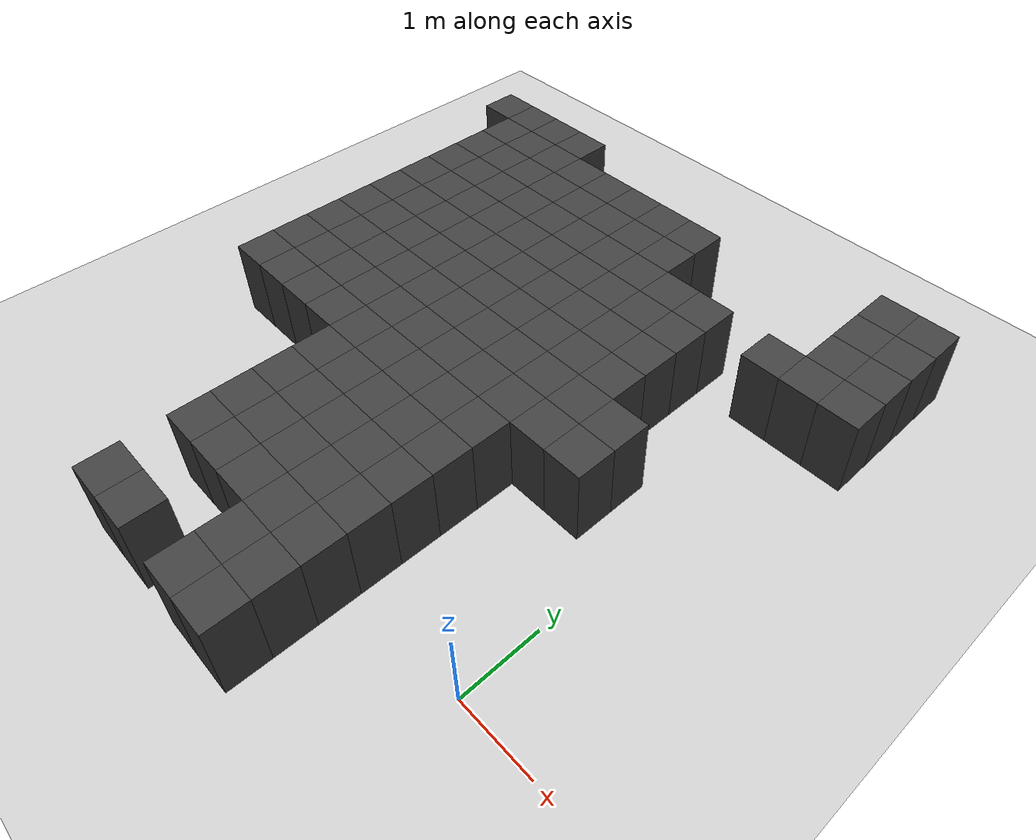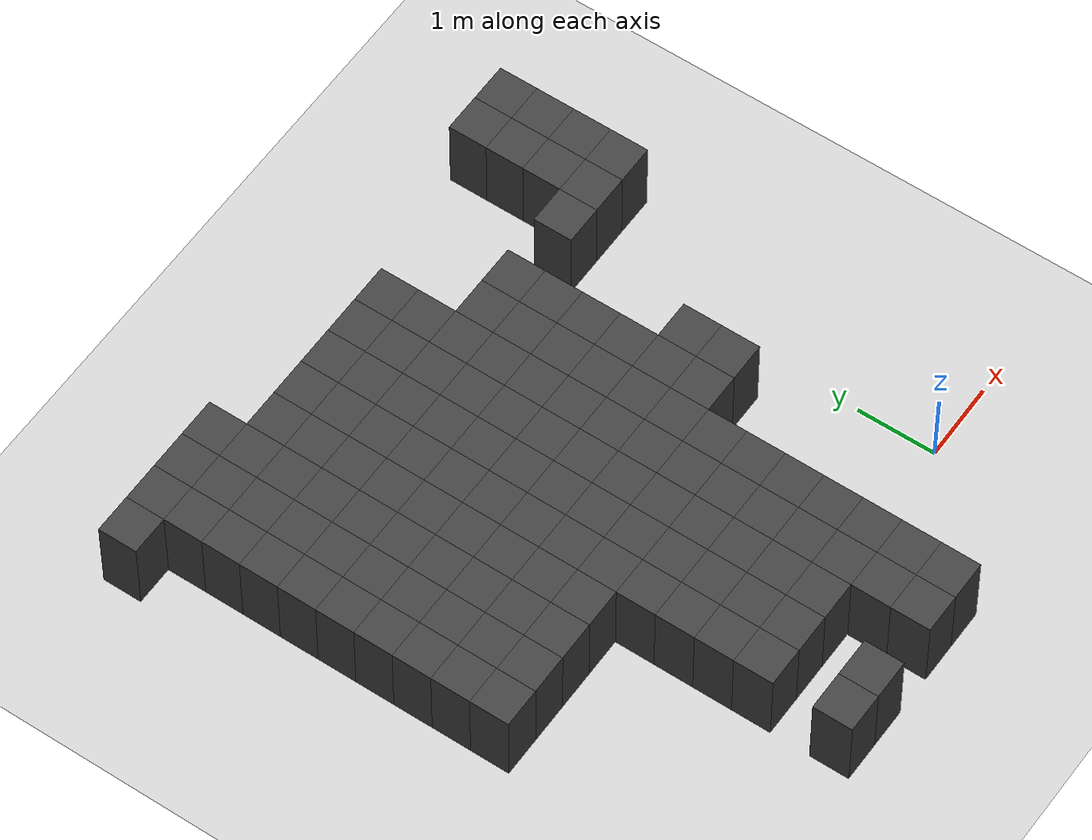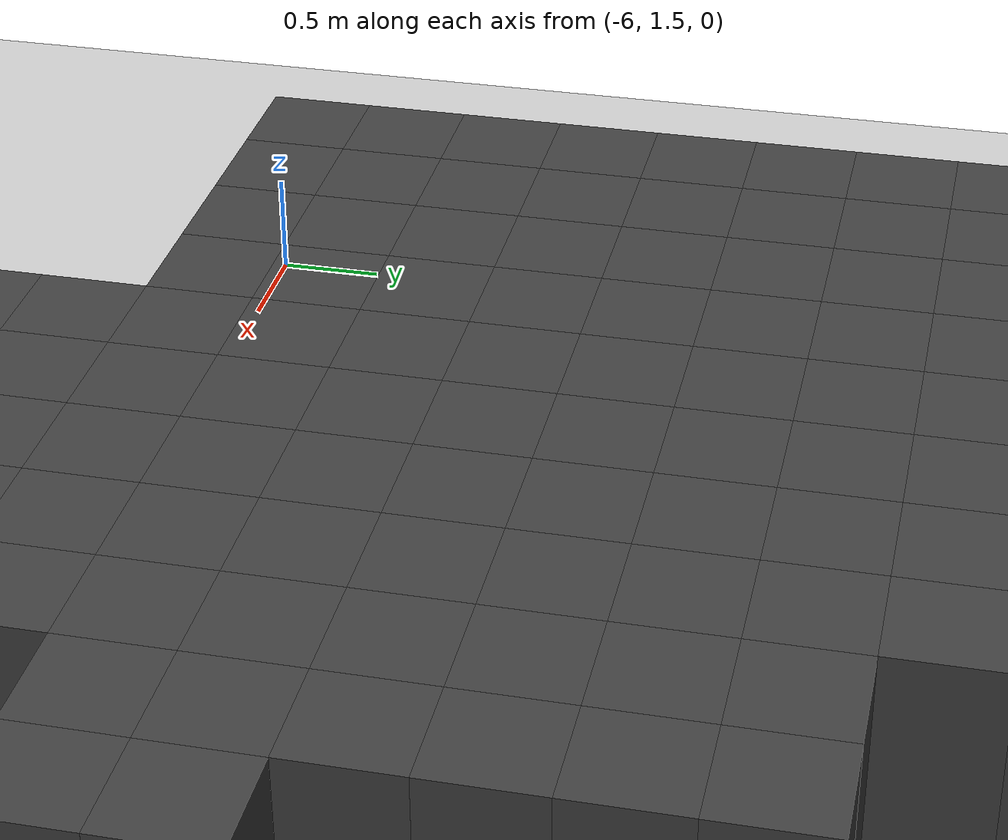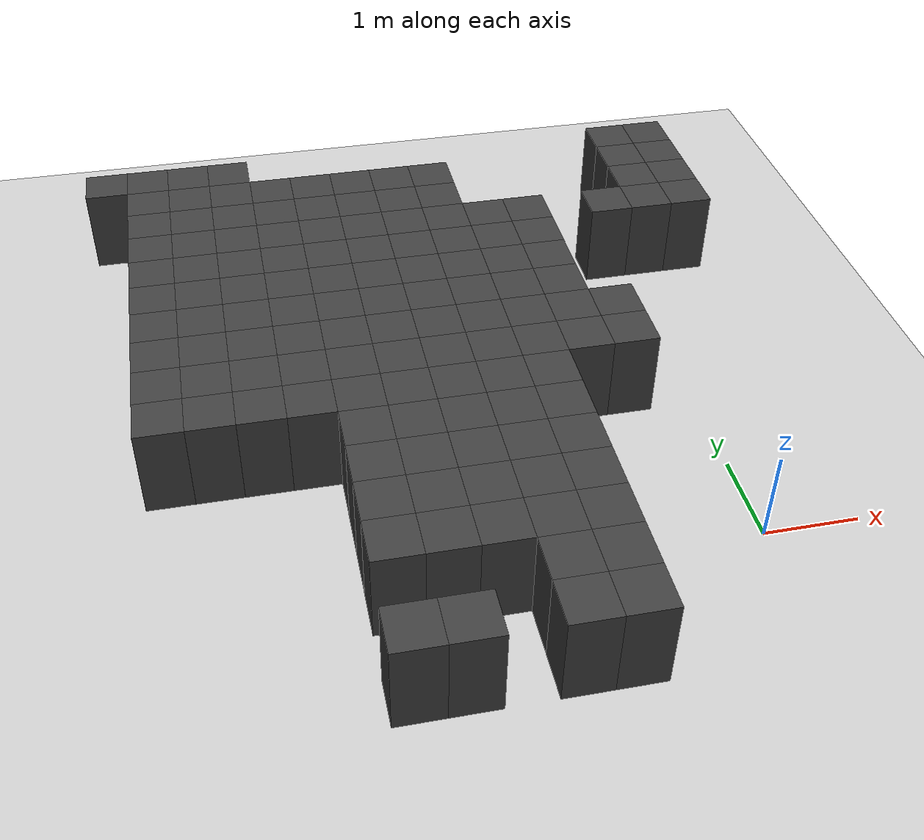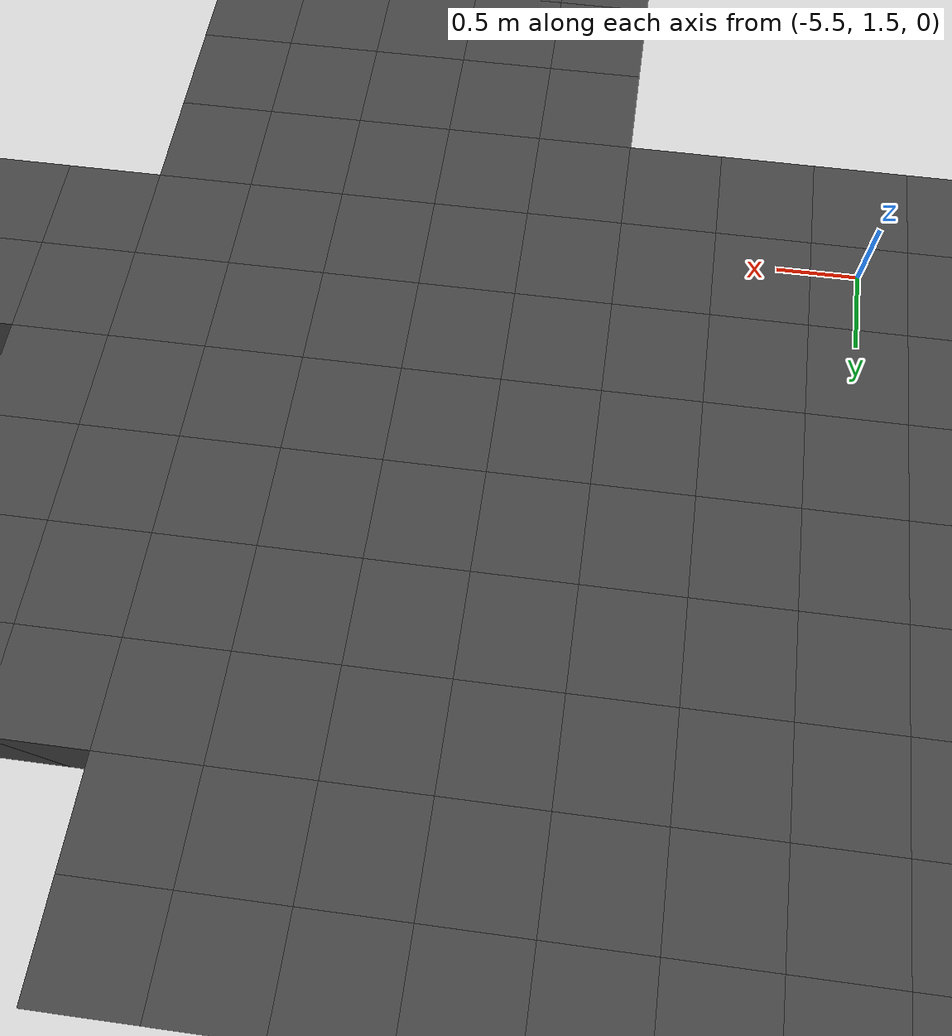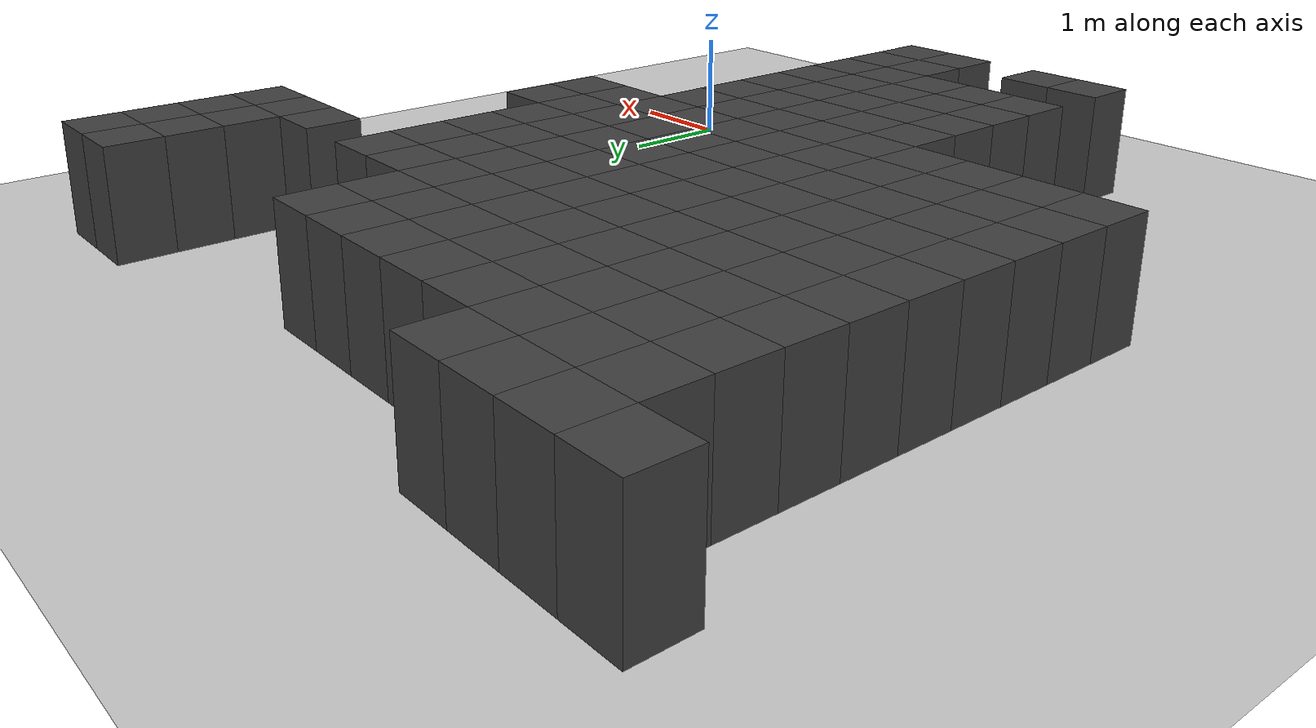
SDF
<sdf version="1.7">
 <world name="map_14190">
  <model name="ground_plane">
   <static>true</static>
   <link name="link">
    <collision name="collision">
     <geometry><plane><normal>0 0 1</normal><size>200 200</size></plane></geometry>
    </collision>
    <visual name="visual">
     <geometry><plane><normal>0 0 1</normal><size>200 200</size></plane></geometry>
     <material><ambient>0.8 0.8 0.8 1</ambient><diffuse>0.8 0.8 0.8 1</diffuse></material>
    </visual>
   </link>
  </model>
  <model name="maze_environment">
   <static>true</static>
   <link name="wall_456">
    <pose>-6.250 6.250 0.500 0 0 0</pose>
    <collision name="col"><geometry><box><size>0.5 0.5 1.0</size></box></geometry></collision>
    <visual name="vis">
     <geometry><box><size>0.5 0.5 1.0</size></box></geometry>
     <material><ambient>0.15 0.15 0.15 1</ambient><diffuse>0.25 0.25 0.25 1</diffuse></material>
    </visual>
   </link>
   <link name="wall_457">
    <pose>-5.750 6.250 0.500 0 0 0</pose>
    <collision name="col"><geometry><box><size>0.5 0.5 1.0</size></box></geometry></collision>
    <visual name="vis">
     <geometry><box><size>0.5 0.5 1.0</size></box></geometry>
     <material><ambient>0.15 0.15 0.15 1</ambient><diffuse>0.25 0.25 0.25 1</diffuse></material>
    </visual>
   </link>
   <link name="wall_458">
    <pose>-5.250 6.250 0.500 0 0 0</pose>
    <collision name="col"><geometry><box><size>0.5 0.5 1.0</size></box></geometry></collision>
    <visual name="vis">
     <geometry><box><size>0.5 0.5 1.0</size></box></geometry>
     <material><ambient>0.15 0.15 0.15 1</ambient><diffuse>0.25 0.25 0.25 1</diffuse></material>
    </visual>
   </link>
   <link name="wall_459">
    <pose>-4.750 6.250 0.500 0 0 0</pose>
    <collision name="col"><geometry><box><size>0.5 0.5 1.0</size></box></geometry></collision>
    <visual name="vis">
     <geometry><box><size>0.5 0.5 1.0</size></box></geometry>
     <material><ambient>0.15 0.15 0.15 1</ambient><diffuse>0.25 0.25 0.25 1</diffuse></material>
    </visual>
   </link>
   <link name="wall_460">
    <pose>0.250 6.250 0.500 0 0 0</pose>
    <collision name="col"><geometry><box><size>0.5 0.5 1.0</size></box></geometry></collision>
    <visual name="vis">
     <geometry><box><size>0.5 0.5 1.0</size></box></geometry>
     <material><ambient>0.15 0.15 0.15 1</ambient><diffuse>0.25 0.25 0.25 1</diffuse></material>
    </visual>
   </link>
   <link name="wall_461">
    <pose>0.750 6.250 0.500 0 0 0</pose>
    <collision name="col"><geometry><box><size>0.5 0.5 1.0</size></box></geometry></collision>
    <visual name="vis">
     <geometry><box><size>0.5 0.5 1.0</size></box></geometry>
     <material><ambient>0.15 0.15 0.15 1</ambient><diffuse>0.25 0.25 0.25 1</diffuse></material>
    </visual>
   </link>
   <link name="wall_479">
    <pose>-5.750 5.750 0.500 0 0 0</pose>
    <collision name="col"><geometry><box><size>0.5 0.5 1.0</size></box></geometry></collision>
    <visual name="vis">
     <geometry><box><size>0.5 0.5 1.0</size></box></geometry>
     <material><ambient>0.15 0.15 0.15 1</ambient><diffuse>0.25 0.25 0.25 1</diffuse></material>
    </visual>
   </link>
   <link name="wall_480">
    <pose>-5.250 5.750 0.500 0 0 0</pose>
    <collision name="col"><geometry><box><size>0.5 0.5 1.0</size></box></geometry></collision>
    <visual name="vis">
     <geometry><box><size>0.5 0.5 1.0</size></box></geometry>
     <material><ambient>0.15 0.15 0.15 1</ambient><diffuse>0.25 0.25 0.25 1</diffuse></material>
    </visual>
   </link>
   <link name="wall_481">
    <pose>-4.750 5.750 0.500 0 0 0</pose>
    <collision name="col"><geometry><box><size>0.5 0.5 1.0</size></box></geometry></collision>
    <visual name="vis">
     <geometry><box><size>0.5 0.5 1.0</size></box></geometry>
     <material><ambient>0.15 0.15 0.15 1</ambient><diffuse>0.25 0.25 0.25 1</diffuse></material>
    </visual>
   </link>
   <link name="wall_482">
    <pose>-4.250 5.750 0.500 0 0 0</pose>
    <collision name="col"><geometry><box><size>0.5 0.5 1.0</size></box></geometry></collision>
    <visual name="vis">
     <geometry><box><size>0.5 0.5 1.0</size></box></geometry>
     <material><ambient>0.15 0.15 0.15 1</ambient><diffuse>0.25 0.25 0.25 1</diffuse></material>
    </visual>
   </link>
   <link name="wall_483">
    <pose>-3.750 5.750 0.500 0 0 0</pose>
    <collision name="col"><geometry><box><size>0.5 0.5 1.0</size></box></geometry></collision>
    <visual name="vis">
     <geometry><box><size>0.5 0.5 1.0</size></box></geometry>
     <material><ambient>0.15 0.15 0.15 1</ambient><diffuse>0.25 0.25 0.25 1</diffuse></material>
    </visual>
   </link>
   <link name="wall_484">
    <pose>-3.250 5.750 0.500 0 0 0</pose>
    <collision name="col"><geometry><box><size>0.5 0.5 1.0</size></box></geometry></collision>
    <visual name="vis">
     <geometry><box><size>0.5 0.5 1.0</size></box></geometry>
     <material><ambient>0.15 0.15 0.15 1</ambient><diffuse>0.25 0.25 0.25 1</diffuse></material>
    </visual>
   </link>
   <link name="wall_485">
    <pose>-2.750 5.750 0.500 0 0 0</pose>
    <collision name="col"><geometry><box><size>0.5 0.5 1.0</size></box></geometry></collision>
    <visual name="vis">
     <geometry><box><size>0.5 0.5 1.0</size></box></geometry>
     <material><ambient>0.15 0.15 0.15 1</ambient><diffuse>0.25 0.25 0.25 1</diffuse></material>
    </visual>
   </link>
   <link name="wall_486">
    <pose>-2.250 5.750 0.500 0 0 0</pose>
    <collision name="col"><geometry><box><size>0.5 0.5 1.0</size></box></geometry></collision>
    <visual name="vis">
     <geometry><box><size>0.5 0.5 1.0</size></box></geometry>
     <material><ambient>0.15 0.15 0.15 1</ambient><diffuse>0.25 0.25 0.25 1</diffuse></material>
    </visual>
   </link>
   <link name="wall_487">
    <pose>0.250 5.750 0.500 0 0 0</pose>
    <collision name="col"><geometry><box><size>0.5 0.5 1.0</size></box></geometry></collision>
    <visual name="vis">
     <geometry><box><size>0.5 0.5 1.0</size></box></geometry>
     <material><ambient>0.15 0.15 0.15 1</ambient><diffuse>0.25 0.25 0.25 1</diffuse></material>
    </visual>
   </link>
   <link name="wall_488">
    <pose>0.750 5.750 0.500 0 0 0</pose>
    <collision name="col"><geometry><box><size>0.5 0.5 1.0</size></box></geometry></collision>
    <visual name="vis">
     <geometry><box><size>0.5 0.5 1.0</size></box></geometry>
     <material><ambient>0.15 0.15 0.15 1</ambient><diffuse>0.25 0.25 0.25 1</diffuse></material>
    </visual>
   </link>
   <link name="wall_503">
    <pose>-5.750 5.250 0.500 0 0 0</pose>
    <collision name="col"><geometry><box><size>0.5 0.5 1.0</size></box></geometry></collision>
    <visual name="vis">
     <geometry><box><size>0.5 0.5 1.0</size></box></geometry>
     <material><ambient>0.15 0.15 0.15 1</ambient><diffuse>0.25 0.25 0.25 1</diffuse></material>
    </visual>
   </link>
   <link name="wall_504">
    <pose>-5.250 5.250 0.500 0 0 0</pose>
    <collision name="col"><geometry><box><size>0.5 0.5 1.0</size></box></geometry></collision>
    <visual name="vis">
     <geometry><box><size>0.5 0.5 1.0</size></box></geometry>
     <material><ambient>0.15 0.15 0.15 1</ambient><diffuse>0.25 0.25 0.25 1</diffuse></material>
    </visual>
   </link>
   <link name="wall_505">
    <pose>-4.750 5.250 0.500 0 0 0</pose>
    <collision name="col"><geometry><box><size>0.5 0.5 1.0</size></box></geometry></collision>
    <visual name="vis">
     <geometry><box><size>0.5 0.5 1.0</size></box></geometry>
     <material><ambient>0.15 0.15 0.15 1</ambient><diffuse>0.25 0.25 0.25 1</diffuse></material>
    </visual>
   </link>
   <link name="wall_506">
    <pose>-4.250 5.250 0.500 0 0 0</pose>
    <collision name="col"><geometry><box><size>0.5 0.5 1.0</size></box></geometry></collision>
    <visual name="vis">
     <geometry><box><size>0.5 0.5 1.0</size></box></geometry>
     <material><ambient>0.15 0.15 0.15 1</ambient><diffuse>0.25 0.25 0.25 1</diffuse></material>
    </visual>
   </link>
   <link name="wall_507">
    <pose>-3.750 5.250 0.500 0 0 0</pose>
    <collision name="col"><geometry><box><size>0.5 0.5 1.0</size></box></geometry></collision>
    <visual name="vis">
     <geometry><box><size>0.5 0.5 1.0</size></box></geometry>
     <material><ambient>0.15 0.15 0.15 1</ambient><diffuse>0.25 0.25 0.25 1</diffuse></material>
    </visual>
   </link>
   <link name="wall_508">
    <pose>-3.250 5.250 0.500 0 0 0</pose>
    <collision name="col"><geometry><box><size>0.5 0.5 1.0</size></box></geometry></collision>
    <visual name="vis">
     <geometry><box><size>0.5 0.5 1.0</size></box></geometry>
     <material><ambient>0.15 0.15 0.15 1</ambient><diffuse>0.25 0.25 0.25 1</diffuse></material>
    </visual>
   </link>
   <link name="wall_509">
    <pose>-2.750 5.250 0.500 0 0 0</pose>
    <collision name="col"><geometry><box><size>0.5 0.5 1.0</size></box></geometry></collision>
    <visual name="vis">
     <geometry><box><size>0.5 0.5 1.0</size></box></geometry>
     <material><ambient>0.15 0.15 0.15 1</ambient><diffuse>0.25 0.25 0.25 1</diffuse></material>
    </visual>
   </link>
   <link name="wall_510">
    <pose>-2.250 5.250 0.500 0 0 0</pose>
    <collision name="col"><geometry><box><size>0.5 0.5 1.0</size></box></geometry></collision>
    <visual name="vis">
     <geometry><box><size>0.5 0.5 1.0</size></box></geometry>
     <material><ambient>0.15 0.15 0.15 1</ambient><diffuse>0.25 0.25 0.25 1</diffuse></material>
    </visual>
   </link>
   <link name="wall_511">
    <pose>0.250 5.250 0.500 0 0 0</pose>
    <collision name="col"><geometry><box><size>0.5 0.5 1.0</size></box></geometry></collision>
    <visual name="vis">
     <geometry><box><size>0.5 0.5 1.0</size></box></geometry>
     <material><ambient>0.15 0.15 0.15 1</ambient><diffuse>0.25 0.25 0.25 1</diffuse></material>
    </visual>
   </link>
   <link name="wall_512">
    <pose>0.750 5.250 0.500 0 0 0</pose>
    <collision name="col"><geometry><box><size>0.5 0.5 1.0</size></box></geometry></collision>
    <visual name="vis">
     <geometry><box><size>0.5 0.5 1.0</size></box></geometry>
     <material><ambient>0.15 0.15 0.15 1</ambient><diffuse>0.25 0.25 0.25 1</diffuse></material>
    </visual>
   </link>
   <link name="wall_531">
    <pose>-5.750 4.750 0.500 0 0 0</pose>
    <collision name="col"><geometry><box><size>0.5 0.5 1.0</size></box></geometry></collision>
    <visual name="vis">
     <geometry><box><size>0.5 0.5 1.0</size></box></geometry>
     <material><ambient>0.15 0.15 0.15 1</ambient><diffuse>0.25 0.25 0.25 1</diffuse></material>
    </visual>
   </link>
   <link name="wall_532">
    <pose>-5.250 4.750 0.500 0 0 0</pose>
    <collision name="col"><geometry><box><size>0.5 0.5 1.0</size></box></geometry></collision>
    <visual name="vis">
     <geometry><box><size>0.5 0.5 1.0</size></box></geometry>
     <material><ambient>0.15 0.15 0.15 1</ambient><diffuse>0.25 0.25 0.25 1</diffuse></material>
    </visual>
   </link>
   <link name="wall_533">
    <pose>-4.750 4.750 0.500 0 0 0</pose>
    <collision name="col"><geometry><box><size>0.5 0.5 1.0</size></box></geometry></collision>
    <visual name="vis">
     <geometry><box><size>0.5 0.5 1.0</size></box></geometry>
     <material><ambient>0.15 0.15 0.15 1</ambient><diffuse>0.25 0.25 0.25 1</diffuse></material>
    </visual>
   </link>
   <link name="wall_534">
    <pose>-4.250 4.750 0.500 0 0 0</pose>
    <collision name="col"><geometry><box><size>0.5 0.5 1.0</size></box></geometry></collision>
    <visual name="vis">
     <geometry><box><size>0.5 0.5 1.0</size></box></geometry>
     <material><ambient>0.15 0.15 0.15 1</ambient><diffuse>0.25 0.25 0.25 1</diffuse></material>
    </visual>
   </link>
   <link name="wall_535">
    <pose>-3.750 4.750 0.500 0 0 0</pose>
    <collision name="col"><geometry><box><size>0.5 0.5 1.0</size></box></geometry></collision>
    <visual name="vis">
     <geometry><box><size>0.5 0.5 1.0</size></box></geometry>
     <material><ambient>0.15 0.15 0.15 1</ambient><diffuse>0.25 0.25 0.25 1</diffuse></material>
    </visual>
   </link>
   <link name="wall_536">
    <pose>-3.250 4.750 0.500 0 0 0</pose>
    <collision name="col"><geometry><box><size>0.5 0.5 1.0</size></box></geometry></collision>
    <visual name="vis">
     <geometry><box><size>0.5 0.5 1.0</size></box></geometry>
     <material><ambient>0.15 0.15 0.15 1</ambient><diffuse>0.25 0.25 0.25 1</diffuse></material>
    </visual>
   </link>
   <link name="wall_537">
    <pose>-2.750 4.750 0.500 0 0 0</pose>
    <collision name="col"><geometry><box><size>0.5 0.5 1.0</size></box></geometry></collision>
    <visual name="vis">
     <geometry><box><size>0.5 0.5 1.0</size></box></geometry>
     <material><ambient>0.15 0.15 0.15 1</ambient><diffuse>0.25 0.25 0.25 1</diffuse></material>
    </visual>
   </link>
   <link name="wall_538">
    <pose>-2.250 4.750 0.500 0 0 0</pose>
    <collision name="col"><geometry><box><size>0.5 0.5 1.0</size></box></geometry></collision>
    <visual name="vis">
     <geometry><box><size>0.5 0.5 1.0</size></box></geometry>
     <material><ambient>0.15 0.15 0.15 1</ambient><diffuse>0.25 0.25 0.25 1</diffuse></material>
    </visual>
   </link>
   <link name="wall_539">
    <pose>-1.750 4.750 0.500 0 0 0</pose>
    <collision name="col"><geometry><box><size>0.5 0.5 1.0</size></box></geometry></collision>
    <visual name="vis">
     <geometry><box><size>0.5 0.5 1.0</size></box></geometry>
     <material><ambient>0.15 0.15 0.15 1</ambient><diffuse>0.25 0.25 0.25 1</diffuse></material>
    </visual>
   </link>
   <link name="wall_540">
    <pose>-1.250 4.750 0.500 0 0 0</pose>
    <collision name="col"><geometry><box><size>0.5 0.5 1.0</size></box></geometry></collision>
    <visual name="vis">
     <geometry><box><size>0.5 0.5 1.0</size></box></geometry>
     <material><ambient>0.15 0.15 0.15 1</ambient><diffuse>0.25 0.25 0.25 1</diffuse></material>
    </visual>
   </link>
   <link name="wall_541">
    <pose>-0.250 4.750 0.500 0 0 0</pose>
    <collision name="col"><geometry><box><size>0.5 0.5 1.0</size></box></geometry></collision>
    <visual name="vis">
     <geometry><box><size>0.5 0.5 1.0</size></box></geometry>
     <material><ambient>0.15 0.15 0.15 1</ambient><diffuse>0.25 0.25 0.25 1</diffuse></material>
    </visual>
   </link>
   <link name="wall_542">
    <pose>0.250 4.750 0.500 0 0 0</pose>
    <collision name="col"><geometry><box><size>0.5 0.5 1.0</size></box></geometry></collision>
    <visual name="vis">
     <geometry><box><size>0.5 0.5 1.0</size></box></geometry>
     <material><ambient>0.15 0.15 0.15 1</ambient><diffuse>0.25 0.25 0.25 1</diffuse></material>
    </visual>
   </link>
   <link name="wall_543">
    <pose>0.750 4.750 0.500 0 0 0</pose>
    <collision name="col"><geometry><box><size>0.5 0.5 1.0</size></box></geometry></collision>
    <visual name="vis">
     <geometry><box><size>0.5 0.5 1.0</size></box></geometry>
     <material><ambient>0.15 0.15 0.15 1</ambient><diffuse>0.25 0.25 0.25 1</diffuse></material>
    </visual>
   </link>
   <link name="wall_568">
    <pose>-5.750 4.250 0.500 0 0 0</pose>
    <collision name="col"><geometry><box><size>0.5 0.5 1.0</size></box></geometry></collision>
    <visual name="vis">
     <geometry><box><size>0.5 0.5 1.0</size></box></geometry>
     <material><ambient>0.15 0.15 0.15 1</ambient><diffuse>0.25 0.25 0.25 1</diffuse></material>
    </visual>
   </link>
   <link name="wall_569">
    <pose>-5.250 4.250 0.500 0 0 0</pose>
    <collision name="col"><geometry><box><size>0.5 0.5 1.0</size></box></geometry></collision>
    <visual name="vis">
     <geometry><box><size>0.5 0.5 1.0</size></box></geometry>
     <material><ambient>0.15 0.15 0.15 1</ambient><diffuse>0.25 0.25 0.25 1</diffuse></material>
    </visual>
   </link>
   <link name="wall_570">
    <pose>-4.750 4.250 0.500 0 0 0</pose>
    <collision name="col"><geometry><box><size>0.5 0.5 1.0</size></box></geometry></collision>
    <visual name="vis">
     <geometry><box><size>0.5 0.5 1.0</size></box></geometry>
     <material><ambient>0.15 0.15 0.15 1</ambient><diffuse>0.25 0.25 0.25 1</diffuse></material>
    </visual>
   </link>
   <link name="wall_571">
    <pose>-4.250 4.250 0.500 0 0 0</pose>
    <collision name="col"><geometry><box><size>0.5 0.5 1.0</size></box></geometry></collision>
    <visual name="vis">
     <geometry><box><size>0.5 0.5 1.0</size></box></geometry>
     <material><ambient>0.15 0.15 0.15 1</ambient><diffuse>0.25 0.25 0.25 1</diffuse></material>
    </visual>
   </link>
   <link name="wall_572">
    <pose>-3.750 4.250 0.500 0 0 0</pose>
    <collision name="col"><geometry><box><size>0.5 0.5 1.0</size></box></geometry></collision>
    <visual name="vis">
     <geometry><box><size>0.5 0.5 1.0</size></box></geometry>
     <material><ambient>0.15 0.15 0.15 1</ambient><diffuse>0.25 0.25 0.25 1</diffuse></material>
    </visual>
   </link>
   <link name="wall_573">
    <pose>-3.250 4.250 0.500 0 0 0</pose>
    <collision name="col"><geometry><box><size>0.5 0.5 1.0</size></box></geometry></collision>
    <visual name="vis">
     <geometry><box><size>0.5 0.5 1.0</size></box></geometry>
     <material><ambient>0.15 0.15 0.15 1</ambient><diffuse>0.25 0.25 0.25 1</diffuse></material>
    </visual>
   </link>
   <link name="wall_574">
    <pose>-2.750 4.250 0.500 0 0 0</pose>
    <collision name="col"><geometry><box><size>0.5 0.5 1.0</size></box></geometry></collision>
    <visual name="vis">
     <geometry><box><size>0.5 0.5 1.0</size></box></geometry>
     <material><ambient>0.15 0.15 0.15 1</ambient><diffuse>0.25 0.25 0.25 1</diffuse></material>
    </visual>
   </link>
   <link name="wall_575">
    <pose>-2.250 4.250 0.500 0 0 0</pose>
    <collision name="col"><geometry><box><size>0.5 0.5 1.0</size></box></geometry></collision>
    <visual name="vis">
     <geometry><box><size>0.5 0.5 1.0</size></box></geometry>
     <material><ambient>0.15 0.15 0.15 1</ambient><diffuse>0.25 0.25 0.25 1</diffuse></material>
    </visual>
   </link>
   <link name="wall_576">
    <pose>-1.750 4.250 0.500 0 0 0</pose>
    <collision name="col"><geometry><box><size>0.5 0.5 1.0</size></box></geometry></collision>
    <visual name="vis">
     <geometry><box><size>0.5 0.5 1.0</size></box></geometry>
     <material><ambient>0.15 0.15 0.15 1</ambient><diffuse>0.25 0.25 0.25 1</diffuse></material>
    </visual>
   </link>
   <link name="wall_577">
    <pose>-1.250 4.250 0.500 0 0 0</pose>
    <collision name="col"><geometry><box><size>0.5 0.5 1.0</size></box></geometry></collision>
    <visual name="vis">
     <geometry><box><size>0.5 0.5 1.0</size></box></geometry>
     <material><ambient>0.15 0.15 0.15 1</ambient><diffuse>0.25 0.25 0.25 1</diffuse></material>
    </visual>
   </link>
   <link name="wall_598">
    <pose>-5.750 3.750 0.500 0 0 0</pose>
    <collision name="col"><geometry><box><size>0.5 0.5 1.0</size></box></geometry></collision>
    <visual name="vis">
     <geometry><box><size>0.5 0.5 1.0</size></box></geometry>
     <material><ambient>0.15 0.15 0.15 1</ambient><diffuse>0.25 0.25 0.25 1</diffuse></material>
    </visual>
   </link>
   <link name="wall_599">
    <pose>-5.250 3.750 0.500 0 0 0</pose>
    <collision name="col"><geometry><box><size>0.5 0.5 1.0</size></box></geometry></collision>
    <visual name="vis">
     <geometry><box><size>0.5 0.5 1.0</size></box></geometry>
     <material><ambient>0.15 0.15 0.15 1</ambient><diffuse>0.25 0.25 0.25 1</diffuse></material>
    </visual>
   </link>
   <link name="wall_600">
    <pose>-4.750 3.750 0.500 0 0 0</pose>
    <collision name="col"><geometry><box><size>0.5 0.5 1.0</size></box></geometry></collision>
    <visual name="vis">
     <geometry><box><size>0.5 0.5 1.0</size></box></geometry>
     <material><ambient>0.15 0.15 0.15 1</ambient><diffuse>0.25 0.25 0.25 1</diffuse></material>
    </visual>
   </link>
   <link name="wall_601">
    <pose>-4.250 3.750 0.500 0 0 0</pose>
    <collision name="col"><geometry><box><size>0.5 0.5 1.0</size></box></geometry></collision>
    <visual name="vis">
     <geometry><box><size>0.5 0.5 1.0</size></box></geometry>
     <material><ambient>0.15 0.15 0.15 1</ambient><diffuse>0.25 0.25 0.25 1</diffuse></material>
    </visual>
   </link>
   <link name="wall_602">
    <pose>-3.750 3.750 0.500 0 0 0</pose>
    <collision name="col"><geometry><box><size>0.5 0.5 1.0</size></box></geometry></collision>
    <visual name="vis">
     <geometry><box><size>0.5 0.5 1.0</size></box></geometry>
     <material><ambient>0.15 0.15 0.15 1</ambient><diffuse>0.25 0.25 0.25 1</diffuse></material>
    </visual>
   </link>
   <link name="wall_603">
    <pose>-3.250 3.750 0.500 0 0 0</pose>
    <collision name="col"><geometry><box><size>0.5 0.5 1.0</size></box></geometry></collision>
    <visual name="vis">
     <geometry><box><size>0.5 0.5 1.0</size></box></geometry>
     <material><ambient>0.15 0.15 0.15 1</ambient><diffuse>0.25 0.25 0.25 1</diffuse></material>
    </visual>
   </link>
   <link name="wall_604">
    <pose>-2.750 3.750 0.500 0 0 0</pose>
    <collision name="col"><geometry><box><size>0.5 0.5 1.0</size></box></geometry></collision>
    <visual name="vis">
     <geometry><box><size>0.5 0.5 1.0</size></box></geometry>
     <material><ambient>0.15 0.15 0.15 1</ambient><diffuse>0.25 0.25 0.25 1</diffuse></material>
    </visual>
   </link>
   <link name="wall_605">
    <pose>-2.250 3.750 0.500 0 0 0</pose>
    <collision name="col"><geometry><box><size>0.5 0.5 1.0</size></box></geometry></collision>
    <visual name="vis">
     <geometry><box><size>0.5 0.5 1.0</size></box></geometry>
     <material><ambient>0.15 0.15 0.15 1</ambient><diffuse>0.25 0.25 0.25 1</diffuse></material>
    </visual>
   </link>
   <link name="wall_606">
    <pose>-1.750 3.750 0.500 0 0 0</pose>
    <collision name="col"><geometry><box><size>0.5 0.5 1.0</size></box></geometry></collision>
    <visual name="vis">
     <geometry><box><size>0.5 0.5 1.0</size></box></geometry>
     <material><ambient>0.15 0.15 0.15 1</ambient><diffuse>0.25 0.25 0.25 1</diffuse></material>
    </visual>
   </link>
   <link name="wall_607">
    <pose>-1.250 3.750 0.500 0 0 0</pose>
    <collision name="col"><geometry><box><size>0.5 0.5 1.0</size></box></geometry></collision>
    <visual name="vis">
     <geometry><box><size>0.5 0.5 1.0</size></box></geometry>
     <material><ambient>0.15 0.15 0.15 1</ambient><diffuse>0.25 0.25 0.25 1</diffuse></material>
    </visual>
   </link>
   <link name="wall_631">
    <pose>-5.750 3.250 0.500 0 0 0</pose>
    <collision name="col"><geometry><box><size>0.5 0.5 1.0</size></box></geometry></collision>
    <visual name="vis">
     <geometry><box><size>0.5 0.5 1.0</size></box></geometry>
     <material><ambient>0.15 0.15 0.15 1</ambient><diffuse>0.25 0.25 0.25 1</diffuse></material>
    </visual>
   </link>
   <link name="wall_632">
    <pose>-5.250 3.250 0.500 0 0 0</pose>
    <collision name="col"><geometry><box><size>0.5 0.5 1.0</size></box></geometry></collision>
    <visual name="vis">
     <geometry><box><size>0.5 0.5 1.0</size></box></geometry>
     <material><ambient>0.15 0.15 0.15 1</ambient><diffuse>0.25 0.25 0.25 1</diffuse></material>
    </visual>
   </link>
   <link name="wall_633">
    <pose>-4.750 3.250 0.500 0 0 0</pose>
    <collision name="col"><geometry><box><size>0.5 0.5 1.0</size></box></geometry></collision>
    <visual name="vis">
     <geometry><box><size>0.5 0.5 1.0</size></box></geometry>
     <material><ambient>0.15 0.15 0.15 1</ambient><diffuse>0.25 0.25 0.25 1</diffuse></material>
    </visual>
   </link>
   <link name="wall_634">
    <pose>-4.250 3.250 0.500 0 0 0</pose>
    <collision name="col"><geometry><box><size>0.5 0.5 1.0</size></box></geometry></collision>
    <visual name="vis">
     <geometry><box><size>0.5 0.5 1.0</size></box></geometry>
     <material><ambient>0.15 0.15 0.15 1</ambient><diffuse>0.25 0.25 0.25 1</diffuse></material>
    </visual>
   </link>
   <link name="wall_635">
    <pose>-3.750 3.250 0.500 0 0 0</pose>
    <collision name="col"><geometry><box><size>0.5 0.5 1.0</size></box></geometry></collision>
    <visual name="vis">
     <geometry><box><size>0.5 0.5 1.0</size></box></geometry>
     <material><ambient>0.15 0.15 0.15 1</ambient><diffuse>0.25 0.25 0.25 1</diffuse></material>
    </visual>
   </link>
   <link name="wall_636">
    <pose>-3.250 3.250 0.500 0 0 0</pose>
    <collision name="col"><geometry><box><size>0.5 0.5 1.0</size></box></geometry></collision>
    <visual name="vis">
     <geometry><box><size>0.5 0.5 1.0</size></box></geometry>
     <material><ambient>0.15 0.15 0.15 1</ambient><diffuse>0.25 0.25 0.25 1</diffuse></material>
    </visual>
   </link>
   <link name="wall_637">
    <pose>-2.750 3.250 0.500 0 0 0</pose>
    <collision name="col"><geometry><box><size>0.5 0.5 1.0</size></box></geometry></collision>
    <visual name="vis">
     <geometry><box><size>0.5 0.5 1.0</size></box></geometry>
     <material><ambient>0.15 0.15 0.15 1</ambient><diffuse>0.25 0.25 0.25 1</diffuse></material>
    </visual>
   </link>
   <link name="wall_638">
    <pose>-2.250 3.250 0.500 0 0 0</pose>
    <collision name="col"><geometry><box><size>0.5 0.5 1.0</size></box></geometry></collision>
    <visual name="vis">
     <geometry><box><size>0.5 0.5 1.0</size></box></geometry>
     <material><ambient>0.15 0.15 0.15 1</ambient><diffuse>0.25 0.25 0.25 1</diffuse></material>
    </visual>
   </link>
   <link name="wall_639">
    <pose>-1.750 3.250 0.500 0 0 0</pose>
    <collision name="col"><geometry><box><size>0.5 0.5 1.0</size></box></geometry></collision>
    <visual name="vis">
     <geometry><box><size>0.5 0.5 1.0</size></box></geometry>
     <material><ambient>0.15 0.15 0.15 1</ambient><diffuse>0.25 0.25 0.25 1</diffuse></material>
    </visual>
   </link>
   <link name="wall_640">
    <pose>-1.250 3.250 0.500 0 0 0</pose>
    <collision name="col"><geometry><box><size>0.5 0.5 1.0</size></box></geometry></collision>
    <visual name="vis">
     <geometry><box><size>0.5 0.5 1.0</size></box></geometry>
     <material><ambient>0.15 0.15 0.15 1</ambient><diffuse>0.25 0.25 0.25 1</diffuse></material>
    </visual>
   </link>
   <link name="wall_672">
    <pose>-5.750 2.750 0.500 0 0 0</pose>
    <collision name="col"><geometry><box><size>0.5 0.5 1.0</size></box></geometry></collision>
    <visual name="vis">
     <geometry><box><size>0.5 0.5 1.0</size></box></geometry>
     <material><ambient>0.15 0.15 0.15 1</ambient><diffuse>0.25 0.25 0.25 1</diffuse></material>
    </visual>
   </link>
   <link name="wall_673">
    <pose>-5.250 2.750 0.500 0 0 0</pose>
    <collision name="col"><geometry><box><size>0.5 0.5 1.0</size></box></geometry></collision>
    <visual name="vis">
     <geometry><box><size>0.5 0.5 1.0</size></box></geometry>
     <material><ambient>0.15 0.15 0.15 1</ambient><diffuse>0.25 0.25 0.25 1</diffuse></material>
    </visual>
   </link>
   <link name="wall_674">
    <pose>-4.750 2.750 0.500 0 0 0</pose>
    <collision name="col"><geometry><box><size>0.5 0.5 1.0</size></box></geometry></collision>
    <visual name="vis">
     <geometry><box><size>0.5 0.5 1.0</size></box></geometry>
     <material><ambient>0.15 0.15 0.15 1</ambient><diffuse>0.25 0.25 0.25 1</diffuse></material>
    </visual>
   </link>
   <link name="wall_675">
    <pose>-4.250 2.750 0.500 0 0 0</pose>
    <collision name="col"><geometry><box><size>0.5 0.5 1.0</size></box></geometry></collision>
    <visual name="vis">
     <geometry><box><size>0.5 0.5 1.0</size></box></geometry>
     <material><ambient>0.15 0.15 0.15 1</ambient><diffuse>0.25 0.25 0.25 1</diffuse></material>
    </visual>
   </link>
   <link name="wall_676">
    <pose>-3.750 2.750 0.500 0 0 0</pose>
    <collision name="col"><geometry><box><size>0.5 0.5 1.0</size></box></geometry></collision>
    <visual name="vis">
     <geometry><box><size>0.5 0.5 1.0</size></box></geometry>
     <material><ambient>0.15 0.15 0.15 1</ambient><diffuse>0.25 0.25 0.25 1</diffuse></material>
    </visual>
   </link>
   <link name="wall_677">
    <pose>-3.250 2.750 0.500 0 0 0</pose>
    <collision name="col"><geometry><box><size>0.5 0.5 1.0</size></box></geometry></collision>
    <visual name="vis">
     <geometry><box><size>0.5 0.5 1.0</size></box></geometry>
     <material><ambient>0.15 0.15 0.15 1</ambient><diffuse>0.25 0.25 0.25 1</diffuse></material>
    </visual>
   </link>
   <link name="wall_678">
    <pose>-2.750 2.750 0.500 0 0 0</pose>
    <collision name="col"><geometry><box><size>0.5 0.5 1.0</size></box></geometry></collision>
    <visual name="vis">
     <geometry><box><size>0.5 0.5 1.0</size></box></geometry>
     <material><ambient>0.15 0.15 0.15 1</ambient><diffuse>0.25 0.25 0.25 1</diffuse></material>
    </visual>
   </link>
   <link name="wall_679">
    <pose>-2.250 2.750 0.500 0 0 0</pose>
    <collision name="col"><geometry><box><size>0.5 0.5 1.0</size></box></geometry></collision>
    <visual name="vis">
     <geometry><box><size>0.5 0.5 1.0</size></box></geometry>
     <material><ambient>0.15 0.15 0.15 1</ambient><diffuse>0.25 0.25 0.25 1</diffuse></material>
    </visual>
   </link>
   <link name="wall_680">
    <pose>-1.750 2.750 0.500 0 0 0</pose>
    <collision name="col"><geometry><box><size>0.5 0.5 1.0</size></box></geometry></collision>
    <visual name="vis">
     <geometry><box><size>0.5 0.5 1.0</size></box></geometry>
     <material><ambient>0.15 0.15 0.15 1</ambient><diffuse>0.25 0.25 0.25 1</diffuse></material>
    </visual>
   </link>
   <link name="wall_681">
    <pose>-1.250 2.750 0.500 0 0 0</pose>
    <collision name="col"><geometry><box><size>0.5 0.5 1.0</size></box></geometry></collision>
    <visual name="vis">
     <geometry><box><size>0.5 0.5 1.0</size></box></geometry>
     <material><ambient>0.15 0.15 0.15 1</ambient><diffuse>0.25 0.25 0.25 1</diffuse></material>
    </visual>
   </link>
   <link name="wall_682">
    <pose>-0.750 2.750 0.500 0 0 0</pose>
    <collision name="col"><geometry><box><size>0.5 0.5 1.0</size></box></geometry></collision>
    <visual name="vis">
     <geometry><box><size>0.5 0.5 1.0</size></box></geometry>
     <material><ambient>0.15 0.15 0.15 1</ambient><diffuse>0.25 0.25 0.25 1</diffuse></material>
    </visual>
   </link>
   <link name="wall_714">
    <pose>-5.750 2.250 0.500 0 0 0</pose>
    <collision name="col"><geometry><box><size>0.5 0.5 1.0</size></box></geometry></collision>
    <visual name="vis">
     <geometry><box><size>0.5 0.5 1.0</size></box></geometry>
     <material><ambient>0.15 0.15 0.15 1</ambient><diffuse>0.25 0.25 0.25 1</diffuse></material>
    </visual>
   </link>
   <link name="wall_715">
    <pose>-5.250 2.250 0.500 0 0 0</pose>
    <collision name="col"><geometry><box><size>0.5 0.5 1.0</size></box></geometry></collision>
    <visual name="vis">
     <geometry><box><size>0.5 0.5 1.0</size></box></geometry>
     <material><ambient>0.15 0.15 0.15 1</ambient><diffuse>0.25 0.25 0.25 1</diffuse></material>
    </visual>
   </link>
   <link name="wall_716">
    <pose>-4.750 2.250 0.500 0 0 0</pose>
    <collision name="col"><geometry><box><size>0.5 0.5 1.0</size></box></geometry></collision>
    <visual name="vis">
     <geometry><box><size>0.5 0.5 1.0</size></box></geometry>
     <material><ambient>0.15 0.15 0.15 1</ambient><diffuse>0.25 0.25 0.25 1</diffuse></material>
    </visual>
   </link>
   <link name="wall_717">
    <pose>-4.250 2.250 0.500 0 0 0</pose>
    <collision name="col"><geometry><box><size>0.5 0.5 1.0</size></box></geometry></collision>
    <visual name="vis">
     <geometry><box><size>0.5 0.5 1.0</size></box></geometry>
     <material><ambient>0.15 0.15 0.15 1</ambient><diffuse>0.25 0.25 0.25 1</diffuse></material>
    </visual>
   </link>
   <link name="wall_718">
    <pose>-3.750 2.250 0.500 0 0 0</pose>
    <collision name="col"><geometry><box><size>0.5 0.5 1.0</size></box></geometry></collision>
    <visual name="vis">
     <geometry><box><size>0.5 0.5 1.0</size></box></geometry>
     <material><ambient>0.15 0.15 0.15 1</ambient><diffuse>0.25 0.25 0.25 1</diffuse></material>
    </visual>
   </link>
   <link name="wall_719">
    <pose>-3.250 2.250 0.500 0 0 0</pose>
    <collision name="col"><geometry><box><size>0.5 0.5 1.0</size></box></geometry></collision>
    <visual name="vis">
     <geometry><box><size>0.5 0.5 1.0</size></box></geometry>
     <material><ambient>0.15 0.15 0.15 1</ambient><diffuse>0.25 0.25 0.25 1</diffuse></material>
    </visual>
   </link>
   <link name="wall_720">
    <pose>-2.750 2.250 0.500 0 0 0</pose>
    <collision name="col"><geometry><box><size>0.5 0.5 1.0</size></box></geometry></collision>
    <visual name="vis">
     <geometry><box><size>0.5 0.5 1.0</size></box></geometry>
     <material><ambient>0.15 0.15 0.15 1</ambient><diffuse>0.25 0.25 0.25 1</diffuse></material>
    </visual>
   </link>
   <link name="wall_721">
    <pose>-2.250 2.250 0.500 0 0 0</pose>
    <collision name="col"><geometry><box><size>0.5 0.5 1.0</size></box></geometry></collision>
    <visual name="vis">
     <geometry><box><size>0.5 0.5 1.0</size></box></geometry>
     <material><ambient>0.15 0.15 0.15 1</ambient><diffuse>0.25 0.25 0.25 1</diffuse></material>
    </visual>
   </link>
   <link name="wall_722">
    <pose>-1.750 2.250 0.500 0 0 0</pose>
    <collision name="col"><geometry><box><size>0.5 0.5 1.0</size></box></geometry></collision>
    <visual name="vis">
     <geometry><box><size>0.5 0.5 1.0</size></box></geometry>
     <material><ambient>0.15 0.15 0.15 1</ambient><diffuse>0.25 0.25 0.25 1</diffuse></material>
    </visual>
   </link>
   <link name="wall_723">
    <pose>-1.250 2.250 0.500 0 0 0</pose>
    <collision name="col"><geometry><box><size>0.5 0.5 1.0</size></box></geometry></collision>
    <visual name="vis">
     <geometry><box><size>0.5 0.5 1.0</size></box></geometry>
     <material><ambient>0.15 0.15 0.15 1</ambient><diffuse>0.25 0.25 0.25 1</diffuse></material>
    </visual>
   </link>
   <link name="wall_724">
    <pose>-0.750 2.250 0.500 0 0 0</pose>
    <collision name="col"><geometry><box><size>0.5 0.5 1.0</size></box></geometry></collision>
    <visual name="vis">
     <geometry><box><size>0.5 0.5 1.0</size></box></geometry>
     <material><ambient>0.15 0.15 0.15 1</ambient><diffuse>0.25 0.25 0.25 1</diffuse></material>
    </visual>
   </link>
   <link name="wall_756">
    <pose>-5.750 1.750 0.500 0 0 0</pose>
    <collision name="col"><geometry><box><size>0.5 0.5 1.0</size></box></geometry></collision>
    <visual name="vis">
     <geometry><box><size>0.5 0.5 1.0</size></box></geometry>
     <material><ambient>0.15 0.15 0.15 1</ambient><diffuse>0.25 0.25 0.25 1</diffuse></material>
    </visual>
   </link>
   <link name="wall_757">
    <pose>-5.250 1.750 0.500 0 0 0</pose>
    <collision name="col"><geometry><box><size>0.5 0.5 1.0</size></box></geometry></collision>
    <visual name="vis">
     <geometry><box><size>0.5 0.5 1.0</size></box></geometry>
     <material><ambient>0.15 0.15 0.15 1</ambient><diffuse>0.25 0.25 0.25 1</diffuse></material>
    </visual>
   </link>
   <link name="wall_758">
    <pose>-4.750 1.750 0.500 0 0 0</pose>
    <collision name="col"><geometry><box><size>0.5 0.5 1.0</size></box></geometry></collision>
    <visual name="vis">
     <geometry><box><size>0.5 0.5 1.0</size></box></geometry>
     <material><ambient>0.15 0.15 0.15 1</ambient><diffuse>0.25 0.25 0.25 1</diffuse></material>
    </visual>
   </link>
   <link name="wall_759">
    <pose>-4.250 1.750 0.500 0 0 0</pose>
    <collision name="col"><geometry><box><size>0.5 0.5 1.0</size></box></geometry></collision>
    <visual name="vis">
     <geometry><box><size>0.5 0.5 1.0</size></box></geometry>
     <material><ambient>0.15 0.15 0.15 1</ambient><diffuse>0.25 0.25 0.25 1</diffuse></material>
    </visual>
   </link>
   <link name="wall_760">
    <pose>-3.750 1.750 0.500 0 0 0</pose>
    <collision name="col"><geometry><box><size>0.5 0.5 1.0</size></box></geometry></collision>
    <visual name="vis">
     <geometry><box><size>0.5 0.5 1.0</size></box></geometry>
     <material><ambient>0.15 0.15 0.15 1</ambient><diffuse>0.25 0.25 0.25 1</diffuse></material>
    </visual>
   </link>
   <link name="wall_761">
    <pose>-3.250 1.750 0.500 0 0 0</pose>
    <collision name="col"><geometry><box><size>0.5 0.5 1.0</size></box></geometry></collision>
    <visual name="vis">
     <geometry><box><size>0.5 0.5 1.0</size></box></geometry>
     <material><ambient>0.15 0.15 0.15 1</ambient><diffuse>0.25 0.25 0.25 1</diffuse></material>
    </visual>
   </link>
   <link name="wall_762">
    <pose>-2.750 1.750 0.500 0 0 0</pose>
    <collision name="col"><geometry><box><size>0.5 0.5 1.0</size></box></geometry></collision>
    <visual name="vis">
     <geometry><box><size>0.5 0.5 1.0</size></box></geometry>
     <material><ambient>0.15 0.15 0.15 1</ambient><diffuse>0.25 0.25 0.25 1</diffuse></material>
    </visual>
   </link>
   <link name="wall_763">
    <pose>-2.250 1.750 0.500 0 0 0</pose>
    <collision name="col"><geometry><box><size>0.5 0.5 1.0</size></box></geometry></collision>
    <visual name="vis">
     <geometry><box><size>0.5 0.5 1.0</size></box></geometry>
     <material><ambient>0.15 0.15 0.15 1</ambient><diffuse>0.25 0.25 0.25 1</diffuse></material>
    </visual>
   </link>
   <link name="wall_764">
    <pose>-1.750 1.750 0.500 0 0 0</pose>
    <collision name="col"><geometry><box><size>0.5 0.5 1.0</size></box></geometry></collision>
    <visual name="vis">
     <geometry><box><size>0.5 0.5 1.0</size></box></geometry>
     <material><ambient>0.15 0.15 0.15 1</ambient><diffuse>0.25 0.25 0.25 1</diffuse></material>
    </visual>
   </link>
   <link name="wall_794">
    <pose>-3.750 1.250 0.500 0 0 0</pose>
    <collision name="col"><geometry><box><size>0.5 0.5 1.0</size></box></geometry></collision>
    <visual name="vis">
     <geometry><box><size>0.5 0.5 1.0</size></box></geometry>
     <material><ambient>0.15 0.15 0.15 1</ambient><diffuse>0.25 0.25 0.25 1</diffuse></material>
    </visual>
   </link>
   <link name="wall_795">
    <pose>-3.250 1.250 0.500 0 0 0</pose>
    <collision name="col"><geometry><box><size>0.5 0.5 1.0</size></box></geometry></collision>
    <visual name="vis">
     <geometry><box><size>0.5 0.5 1.0</size></box></geometry>
     <material><ambient>0.15 0.15 0.15 1</ambient><diffuse>0.25 0.25 0.25 1</diffuse></material>
    </visual>
   </link>
   <link name="wall_796">
    <pose>-2.750 1.250 0.500 0 0 0</pose>
    <collision name="col"><geometry><box><size>0.5 0.5 1.0</size></box></geometry></collision>
    <visual name="vis">
     <geometry><box><size>0.5 0.5 1.0</size></box></geometry>
     <material><ambient>0.15 0.15 0.15 1</ambient><diffuse>0.25 0.25 0.25 1</diffuse></material>
    </visual>
   </link>
   <link name="wall_797">
    <pose>-2.250 1.250 0.500 0 0 0</pose>
    <collision name="col"><geometry><box><size>0.5 0.5 1.0</size></box></geometry></collision>
    <visual name="vis">
     <geometry><box><size>0.5 0.5 1.0</size></box></geometry>
     <material><ambient>0.15 0.15 0.15 1</ambient><diffuse>0.25 0.25 0.25 1</diffuse></material>
    </visual>
   </link>
   <link name="wall_798">
    <pose>-1.750 1.250 0.500 0 0 0</pose>
    <collision name="col"><geometry><box><size>0.5 0.5 1.0</size></box></geometry></collision>
    <visual name="vis">
     <geometry><box><size>0.5 0.5 1.0</size></box></geometry>
     <material><ambient>0.15 0.15 0.15 1</ambient><diffuse>0.25 0.25 0.25 1</diffuse></material>
    </visual>
   </link>
   <link name="wall_828">
    <pose>-3.750 0.750 0.500 0 0 0</pose>
    <collision name="col"><geometry><box><size>0.5 0.5 1.0</size></box></geometry></collision>
    <visual name="vis">
     <geometry><box><size>0.5 0.5 1.0</size></box></geometry>
     <material><ambient>0.15 0.15 0.15 1</ambient><diffuse>0.25 0.25 0.25 1</diffuse></material>
    </visual>
   </link>
   <link name="wall_829">
    <pose>-3.250 0.750 0.500 0 0 0</pose>
    <collision name="col"><geometry><box><size>0.5 0.5 1.0</size></box></geometry></collision>
    <visual name="vis">
     <geometry><box><size>0.5 0.5 1.0</size></box></geometry>
     <material><ambient>0.15 0.15 0.15 1</ambient><diffuse>0.25 0.25 0.25 1</diffuse></material>
    </visual>
   </link>
   <link name="wall_830">
    <pose>-2.750 0.750 0.500 0 0 0</pose>
    <collision name="col"><geometry><box><size>0.5 0.5 1.0</size></box></geometry></collision>
    <visual name="vis">
     <geometry><box><size>0.5 0.5 1.0</size></box></geometry>
     <material><ambient>0.15 0.15 0.15 1</ambient><diffuse>0.25 0.25 0.25 1</diffuse></material>
    </visual>
   </link>
   <link name="wall_831">
    <pose>-2.250 0.750 0.500 0 0 0</pose>
    <collision name="col"><geometry><box><size>0.5 0.5 1.0</size></box></geometry></collision>
    <visual name="vis">
     <geometry><box><size>0.5 0.5 1.0</size></box></geometry>
     <material><ambient>0.15 0.15 0.15 1</ambient><diffuse>0.25 0.25 0.25 1</diffuse></material>
    </visual>
   </link>
   <link name="wall_832">
    <pose>-1.750 0.750 0.500 0 0 0</pose>
    <collision name="col"><geometry><box><size>0.5 0.5 1.0</size></box></geometry></collision>
    <visual name="vis">
     <geometry><box><size>0.5 0.5 1.0</size></box></geometry>
     <material><ambient>0.15 0.15 0.15 1</ambient><diffuse>0.25 0.25 0.25 1</diffuse></material>
    </visual>
   </link>
   <link name="wall_862">
    <pose>-3.750 0.250 0.500 0 0 0</pose>
    <collision name="col"><geometry><box><size>0.5 0.5 1.0</size></box></geometry></collision>
    <visual name="vis">
     <geometry><box><size>0.5 0.5 1.0</size></box></geometry>
     <material><ambient>0.15 0.15 0.15 1</ambient><diffuse>0.25 0.25 0.25 1</diffuse></material>
    </visual>
   </link>
   <link name="wall_863">
    <pose>-3.250 0.250 0.500 0 0 0</pose>
    <collision name="col"><geometry><box><size>0.5 0.5 1.0</size></box></geometry></collision>
    <visual name="vis">
     <geometry><box><size>0.5 0.5 1.0</size></box></geometry>
     <material><ambient>0.15 0.15 0.15 1</ambient><diffuse>0.25 0.25 0.25 1</diffuse></material>
    </visual>
   </link>
   <link name="wall_864">
    <pose>-2.750 0.250 0.500 0 0 0</pose>
    <collision name="col"><geometry><box><size>0.5 0.5 1.0</size></box></geometry></collision>
    <visual name="vis">
     <geometry><box><size>0.5 0.5 1.0</size></box></geometry>
     <material><ambient>0.15 0.15 0.15 1</ambient><diffuse>0.25 0.25 0.25 1</diffuse></material>
    </visual>
   </link>
   <link name="wall_865">
    <pose>-2.250 0.250 0.500 0 0 0</pose>
    <collision name="col"><geometry><box><size>0.5 0.5 1.0</size></box></geometry></collision>
    <visual name="vis">
     <geometry><box><size>0.5 0.5 1.0</size></box></geometry>
     <material><ambient>0.15 0.15 0.15 1</ambient><diffuse>0.25 0.25 0.25 1</diffuse></material>
    </visual>
   </link>
   <link name="wall_866">
    <pose>-1.750 0.250 0.500 0 0 0</pose>
    <collision name="col"><geometry><box><size>0.5 0.5 1.0</size></box></geometry></collision>
    <visual name="vis">
     <geometry><box><size>0.5 0.5 1.0</size></box></geometry>
     <material><ambient>0.15 0.15 0.15 1</ambient><diffuse>0.25 0.25 0.25 1</diffuse></material>
    </visual>
   </link>
   <link name="wall_896">
    <pose>-3.750 -0.250 0.500 0 0 0</pose>
    <collision name="col"><geometry><box><size>0.5 0.5 1.0</size></box></geometry></collision>
    <visual name="vis">
     <geometry><box><size>0.5 0.5 1.0</size></box></geometry>
     <material><ambient>0.15 0.15 0.15 1</ambient><diffuse>0.25 0.25 0.25 1</diffuse></material>
    </visual>
   </link>
   <link name="wall_897">
    <pose>-3.250 -0.250 0.500 0 0 0</pose>
    <collision name="col"><geometry><box><size>0.5 0.5 1.0</size></box></geometry></collision>
    <visual name="vis">
     <geometry><box><size>0.5 0.5 1.0</size></box></geometry>
     <material><ambient>0.15 0.15 0.15 1</ambient><diffuse>0.25 0.25 0.25 1</diffuse></material>
    </visual>
   </link>
   <link name="wall_898">
    <pose>-2.750 -0.250 0.500 0 0 0</pose>
    <collision name="col"><geometry><box><size>0.5 0.5 1.0</size></box></geometry></collision>
    <visual name="vis">
     <geometry><box><size>0.5 0.5 1.0</size></box></geometry>
     <material><ambient>0.15 0.15 0.15 1</ambient><diffuse>0.25 0.25 0.25 1</diffuse></material>
    </visual>
   </link>
   <link name="wall_899">
    <pose>-2.250 -0.250 0.500 0 0 0</pose>
    <collision name="col"><geometry><box><size>0.5 0.5 1.0</size></box></geometry></collision>
    <visual name="vis">
     <geometry><box><size>0.5 0.5 1.0</size></box></geometry>
     <material><ambient>0.15 0.15 0.15 1</ambient><diffuse>0.25 0.25 0.25 1</diffuse></material>
    </visual>
   </link>
   <link name="wall_900">
    <pose>-1.750 -0.250 0.500 0 0 0</pose>
    <collision name="col"><geometry><box><size>0.5 0.5 1.0</size></box></geometry></collision>
    <visual name="vis">
     <geometry><box><size>0.5 0.5 1.0</size></box></geometry>
     <material><ambient>0.15 0.15 0.15 1</ambient><diffuse>0.25 0.25 0.25 1</diffuse></material>
    </visual>
   </link>
   <link name="wall_930">
    <pose>-2.250 -0.750 0.500 0 0 0</pose>
    <collision name="col"><geometry><box><size>0.5 0.5 1.0</size></box></geometry></collision>
    <visual name="vis">
     <geometry><box><size>0.5 0.5 1.0</size></box></geometry>
     <material><ambient>0.15 0.15 0.15 1</ambient><diffuse>0.25 0.25 0.25 1</diffuse></material>
    </visual>
   </link>
   <link name="wall_931">
    <pose>-1.750 -0.750 0.500 0 0 0</pose>
    <collision name="col"><geometry><box><size>0.5 0.5 1.0</size></box></geometry></collision>
    <visual name="vis">
     <geometry><box><size>0.5 0.5 1.0</size></box></geometry>
     <material><ambient>0.15 0.15 0.15 1</ambient><diffuse>0.25 0.25 0.25 1</diffuse></material>
    </visual>
   </link>
   <link name="wall_961">
    <pose>-3.750 -1.250 0.500 0 0 0</pose>
    <collision name="col"><geometry><box><size>0.5 0.5 1.0</size></box></geometry></collision>
    <visual name="vis">
     <geometry><box><size>0.5 0.5 1.0</size></box></geometry>
     <material><ambient>0.15 0.15 0.15 1</ambient><diffuse>0.25 0.25 0.25 1</diffuse></material>
    </visual>
   </link>
   <link name="wall_962">
    <pose>-3.250 -1.250 0.500 0 0 0</pose>
    <collision name="col"><geometry><box><size>0.5 0.5 1.0</size></box></geometry></collision>
    <visual name="vis">
     <geometry><box><size>0.5 0.5 1.0</size></box></geometry>
     <material><ambient>0.15 0.15 0.15 1</ambient><diffuse>0.25 0.25 0.25 1</diffuse></material>
    </visual>
   </link>
   <link name="wall_963">
    <pose>-2.250 -1.250 0.500 0 0 0</pose>
    <collision name="col"><geometry><box><size>0.5 0.5 1.0</size></box></geometry></collision>
    <visual name="vis">
     <geometry><box><size>0.5 0.5 1.0</size></box></geometry>
     <material><ambient>0.15 0.15 0.15 1</ambient><diffuse>0.25 0.25 0.25 1</diffuse></material>
    </visual>
   </link>
   <link name="wall_964">
    <pose>-1.750 -1.250 0.500 0 0 0</pose>
    <collision name="col"><geometry><box><size>0.5 0.5 1.0</size></box></geometry></collision>
    <visual name="vis">
     <geometry><box><size>0.5 0.5 1.0</size></box></geometry>
     <material><ambient>0.15 0.15 0.15 1</ambient><diffuse>0.25 0.25 0.25 1</diffuse></material>
    </visual>
   </link>
  </model>
 </world>
</sdf>
